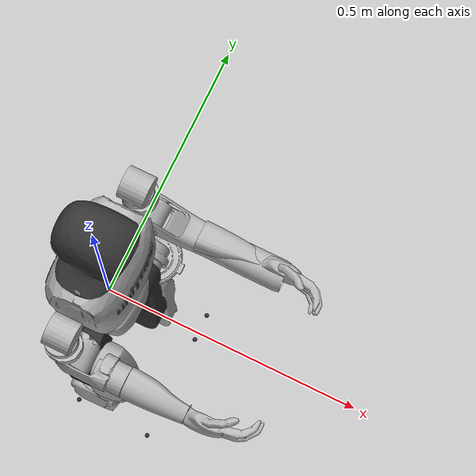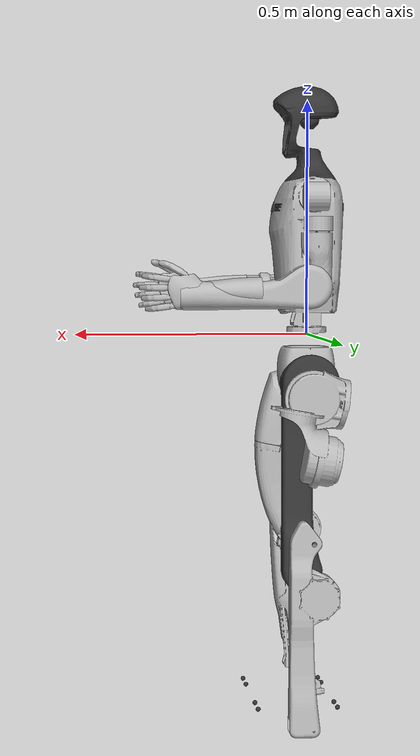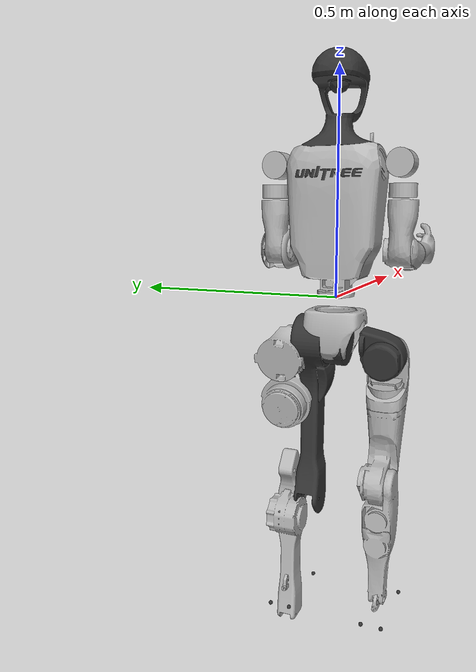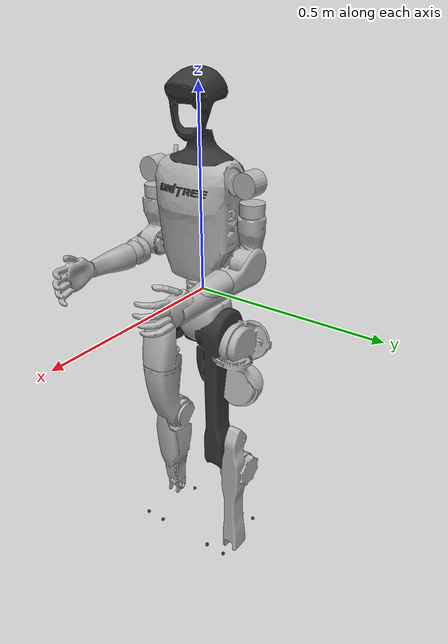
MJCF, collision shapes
<?xml version='1.0' encoding='utf-8'?>
<mujoco model="g1_23dof_rev_1_0">
  <compiler angle="radian" meshdir=".." boundmass="1e-06" boundinertia="1e-08" />
  <asset>
    <mesh name="mesh_0" content_type="model/stl" file="meshes/pelvis.STL" />
    <mesh name="mesh_1" content_type="model/stl" file="meshes/pelvis_contour_link.STL" />
    <mesh name="mesh_2" content_type="model/stl" file="meshes/pelvis_contour_link.STL" />
    <mesh name="mesh_3" content_type="model/stl" file="meshes/left_hip_pitch_link.STL" />
    <mesh name="mesh_4" content_type="model/stl" file="meshes/left_hip_pitch_link.STL" />
    <mesh name="mesh_5" content_type="model/stl" file="meshes/left_hip_roll_link.STL" />
    <mesh name="mesh_6" content_type="model/stl" file="meshes/left_hip_roll_link.STL" />
    <mesh name="mesh_7" content_type="model/stl" file="meshes/left_hip_yaw_link.STL" />
    <mesh name="mesh_8" content_type="model/stl" file="meshes/left_hip_yaw_link.STL" />
    <mesh name="mesh_9" content_type="model/stl" file="meshes/left_knee_link.STL" />
    <mesh name="mesh_10" content_type="model/stl" file="meshes/left_knee_link.STL" />
    <mesh name="mesh_11" content_type="model/stl" file="meshes/left_ankle_pitch_link.STL" />
    <mesh name="mesh_12" content_type="model/stl" file="meshes/left_ankle_pitch_link.STL" />
    <mesh name="mesh_13" content_type="model/stl" file="meshes/left_ankle_roll_link.STL" />
    <mesh name="mesh_14" content_type="model/stl" file="meshes/right_hip_pitch_link.STL" />
    <mesh name="mesh_15" content_type="model/stl" file="meshes/right_hip_pitch_link.STL" />
    <mesh name="mesh_16" content_type="model/stl" file="meshes/right_hip_roll_link.STL" />
    <mesh name="mesh_17" content_type="model/stl" file="meshes/right_hip_roll_link.STL" />
    <mesh name="mesh_18" content_type="model/stl" file="meshes/right_hip_yaw_link.STL" />
    <mesh name="mesh_19" content_type="model/stl" file="meshes/right_hip_yaw_link.STL" />
    <mesh name="mesh_20" content_type="model/stl" file="meshes/right_knee_link.STL" />
    <mesh name="mesh_21" content_type="model/stl" file="meshes/right_knee_link.STL" />
    <mesh name="mesh_22" content_type="model/stl" file="meshes/right_ankle_pitch_link.STL" />
    <mesh name="mesh_23" content_type="model/stl" file="meshes/right_ankle_pitch_link.STL" />
    <mesh name="mesh_24" content_type="model/stl" file="meshes/right_ankle_roll_link.STL" />
    <mesh name="mesh_25" content_type="model/stl" file="meshes/torso_link_23dof_rev_1_0.STL" />
    <mesh name="mesh_26" content_type="model/stl" file="meshes/torso_link_23dof_rev_1_0.STL" />
    <mesh name="mesh_27" content_type="model/stl" file="meshes/logo_link.STL" />
    <mesh name="mesh_28" content_type="model/stl" file="meshes/logo_link.STL" />
    <mesh name="mesh_29" content_type="model/stl" file="meshes/head_link.STL" />
    <mesh name="mesh_30" content_type="model/stl" file="meshes/head_link.STL" />
    <mesh name="mesh_31" content_type="model/stl" file="meshes/left_shoulder_pitch_link.STL" />
    <mesh name="mesh_32" content_type="model/stl" file="meshes/left_shoulder_roll_link.STL" />
    <mesh name="mesh_33" content_type="model/stl" file="meshes/left_shoulder_yaw_link.STL" />
    <mesh name="mesh_34" content_type="model/stl" file="meshes/left_shoulder_yaw_link.STL" />
    <mesh name="mesh_35" content_type="model/stl" file="meshes/left_elbow_link.STL" />
    <mesh name="mesh_36" content_type="model/stl" file="meshes/left_elbow_link.STL" />
    <mesh name="mesh_37" content_type="model/stl" file="meshes/left_wrist_roll_rubber_hand.STL" />
    <mesh name="mesh_38" content_type="model/stl" file="meshes/left_wrist_roll_rubber_hand.STL" />
    <mesh name="mesh_39" content_type="model/stl" file="meshes/right_shoulder_pitch_link.STL" />
    <mesh name="mesh_40" content_type="model/stl" file="meshes/right_shoulder_roll_link.STL" />
    <mesh name="mesh_41" content_type="model/stl" file="meshes/right_shoulder_yaw_link.STL" />
    <mesh name="mesh_42" content_type="model/stl" file="meshes/right_shoulder_yaw_link.STL" />
    <mesh name="mesh_43" content_type="model/stl" file="meshes/right_elbow_link.STL" />
    <mesh name="mesh_44" content_type="model/stl" file="meshes/right_elbow_link.STL" />
    <mesh name="mesh_45" content_type="model/stl" file="meshes/right_wrist_roll_rubber_hand.STL" />
    <mesh name="mesh_46" content_type="model/stl" file="meshes/right_wrist_roll_rubber_hand.STL" />
  </asset>
  <worldbody>
    <body name="pelvis">
      <inertial pos="2.37284e-08 0 -0.0760301" quat="1 0 -0.00039983 0" mass="3.814" diaginertia="0.0105549 0.00931481 0.00791852" />
      <joint type="free" />
      <geom type="mesh" contype="0" conaffinity="0" group="1" density="0" rgba="0.2 0.2 0.2 1" mesh="mesh_0" />
      <geom type="mesh" contype="0" conaffinity="0" group="1" density="0" rgba="0.7 0.7 0.7 1" mesh="mesh_1" />
      <geom type="mesh" rgba="0.7 0.7 0.7 1" mesh="mesh_2" />
      <body name="left_hip_pitch_link" pos="0 0.064452 -0.1027">
        <inertial pos="0.002741 0.047791 -0.02606" quat="0.954862 0.293964 0.0302556 0.030122" mass="1.35" diaginertia="0.00181517 0.00153422 0.00116212" />
        <joint name="left_hip_pitch_joint" pos="0 0 0" axis="0 1 0" range="-2.5307 2.8798" actuatorfrcrange="-88 88" />
        <geom type="mesh" contype="0" conaffinity="0" group="1" density="0" rgba="0.2 0.2 0.2 1" mesh="mesh_3" />
        <geom type="mesh" rgba="0.2 0.2 0.2 1" mesh="mesh_4" />
        <body name="left_hip_roll_link" pos="0 0.052 -0.030465" quat="0.996179 0 -0.0873386 0">
          <inertial pos="0.029812 -0.001045 -0.087934" quat="0.977808 -1.97119e-05 0.205576 -0.0403793" mass="1.52" diaginertia="0.00254986 0.00241169 0.00148755" />
          <joint name="left_hip_roll_joint" pos="0 0 0" axis="1 0 0" range="-0.5236 2.9671" actuatorfrcrange="-139 139" />
          <geom type="mesh" contype="0" conaffinity="0" group="1" density="0" rgba="0.7 0.7 0.7 1" mesh="mesh_5" />
          <geom type="mesh" rgba="0.7 0.7 0.7 1" mesh="mesh_6" />
          <body name="left_hip_yaw_link" pos="0.025001 0 -0.12412">
            <inertial pos="-0.057709 -0.010981 -0.15078" quat="0.600598 0.15832 0.223482 0.751181" mass="1.702" diaginertia="0.00776166 0.00717575 0.00160139" />
            <joint name="left_hip_yaw_joint" pos="0 0 0" axis="0 0 1" range="-2.7576 2.7576" actuatorfrcrange="-88 88" />
            <geom type="mesh" contype="0" conaffinity="0" group="1" density="0" rgba="0.7 0.7 0.7 1" mesh="mesh_7" />
            <geom type="mesh" rgba="0.7 0.7 0.7 1" mesh="mesh_8" />
            <body name="left_knee_link" pos="-0.078273 0.0021489 -0.17734" quat="0.996179 0 0.0873386 0">
              <inertial pos="0.005457 0.003964 -0.12074" quat="0.923418 -0.0327699 0.0158246 0.382067" mass="1.932" diaginertia="0.0113804 0.0112778 0.00146458" />
              <joint name="left_knee_joint" pos="0 0 0" axis="0 1 0" range="-0.087267 2.8798" actuatorfrcrange="-139 139" />
              <geom type="mesh" contype="0" conaffinity="0" group="1" density="0" rgba="0.7 0.7 0.7 1" mesh="mesh_9" />
              <geom type="mesh" rgba="0.7 0.7 0.7 1" mesh="mesh_10" />
              <body name="left_ankle_pitch_link" pos="0 -9.4445e-05 -0.30001">
                <inertial pos="-0.007269 0 0.011137" quat="0.603053 0.369225 0.369225 0.603053" mass="0.074" diaginertia="1.89e-05 1.40805e-05 6.9195e-06" />
                <joint name="left_ankle_pitch_joint" pos="0 0 0" axis="0 1 0" range="-0.87267 0.5236" actuatorfrcrange="-35 35" />
                <geom type="mesh" contype="0" conaffinity="0" group="1" density="0" rgba="0.7 0.7 0.7 1" mesh="mesh_11" />
                <geom type="mesh" rgba="0.7 0.7 0.7 1" mesh="mesh_12" />
                <body name="left_ankle_roll_link" pos="0 0 -0.017558">
                  <inertial pos="0.026505 0 -0.016425" quat="-0.000481092 0.728482 -0.000618967 0.685065" mass="0.608" diaginertia="0.00167218 0.0016161 0.000217621" />
                  <joint name="left_ankle_roll_joint" pos="0 0 0" axis="1 0 0" range="-0.2618 0.2618" actuatorfrcrange="-35 35" />
                  <geom type="mesh" contype="0" conaffinity="0" group="1" density="0" rgba="0.2 0.2 0.2 1" mesh="mesh_13" />
                  <geom size="0.005" pos="-0.05 0.025 -0.03" rgba="0.2 0.2 0.2 1" />
                  <geom size="0.005" pos="-0.05 -0.025 -0.03" rgba="0.2 0.2 0.2 1" />
                  <geom size="0.005" pos="0.12 0.03 -0.03" rgba="0.2 0.2 0.2 1" />
                  <geom size="0.005" pos="0.12 -0.03 -0.03" rgba="0.2 0.2 0.2 1" />
                </body>
              </body>
            </body>
          </body>
        </body>
      </body>
      <body name="right_hip_pitch_link" pos="0 -0.064452 -0.1027">
        <inertial pos="0.002741 -0.047791 -0.02606" quat="0.954862 -0.293964 0.0302556 -0.030122" mass="1.35" diaginertia="0.00181517 0.00153422 0.00116212" />
        <joint name="right_hip_pitch_joint" pos="0 0 0" axis="0 1 0" range="-2.5307 2.8798" actuatorfrcrange="-88 88" />
        <geom type="mesh" contype="0" conaffinity="0" group="1" density="0" rgba="0.2 0.2 0.2 1" mesh="mesh_14" />
        <geom type="mesh" rgba="0.2 0.2 0.2 1" mesh="mesh_15" />
        <body name="right_hip_roll_link" pos="0 -0.052 -0.030465" quat="0.996179 0 -0.0873386 0">
          <inertial pos="0.029812 0.001045 -0.087934" quat="0.977808 1.97119e-05 0.205576 0.0403793" mass="1.52" diaginertia="0.00254986 0.00241169 0.00148755" />
          <joint name="right_hip_roll_joint" pos="0 0 0" axis="1 0 0" range="-2.9671 0.5236" actuatorfrcrange="-139 139" />
          <geom type="mesh" contype="0" conaffinity="0" group="1" density="0" rgba="0.7 0.7 0.7 1" mesh="mesh_16" />
          <geom type="mesh" rgba="0.7 0.7 0.7 1" mesh="mesh_17" />
          <body name="right_hip_yaw_link" pos="0.025001 0 -0.12412">
            <inertial pos="-0.057709 0.010981 -0.15078" quat="0.751181 0.223482 0.15832 0.600598" mass="1.702" diaginertia="0.00776166 0.00717575 0.00160139" />
            <joint name="right_hip_yaw_joint" pos="0 0 0" axis="0 0 1" range="-2.7576 2.7576" actuatorfrcrange="-88 88" />
            <geom type="mesh" contype="0" conaffinity="0" group="1" density="0" rgba="0.7 0.7 0.7 1" mesh="mesh_18" />
            <geom type="mesh" rgba="0.7 0.7 0.7 1" mesh="mesh_19" />
            <body name="right_knee_link" pos="-0.078273 -0.0021489 -0.17734" quat="0.996179 0 0.0873386 0">
              <inertial pos="0.005457 -0.003964 -0.12074" quat="0.923439 0.0345276 0.0116333 -0.382012" mass="1.932" diaginertia="0.011374 0.0112843 0.00146452" />
              <joint name="right_knee_joint" pos="0 0 0" axis="0 1 0" range="-0.087267 2.8798" actuatorfrcrange="-139 139" />
              <geom type="mesh" contype="0" conaffinity="0" group="1" density="0" rgba="0.7 0.7 0.7 1" mesh="mesh_20" />
              <geom type="mesh" rgba="0.7 0.7 0.7 1" mesh="mesh_21" />
              <body name="right_ankle_pitch_link" pos="0 9.4445e-05 -0.30001">
                <inertial pos="-0.007269 0 0.011137" quat="0.603053 0.369225 0.369225 0.603053" mass="0.074" diaginertia="1.89e-05 1.40805e-05 6.9195e-06" />
                <joint name="right_ankle_pitch_joint" pos="0 0 0" axis="0 1 0" range="-0.87267 0.5236" actuatorfrcrange="-35 35" />
                <geom type="mesh" contype="0" conaffinity="0" group="1" density="0" rgba="0.7 0.7 0.7 1" mesh="mesh_22" />
                <geom type="mesh" rgba="0.7 0.7 0.7 1" mesh="mesh_23" />
                <body name="right_ankle_roll_link" pos="0 0 -0.017558">
                  <inertial pos="0.026505 0 -0.016425" quat="0.000481092 0.728482 0.000618967 0.685065" mass="0.608" diaginertia="0.00167218 0.0016161 0.000217621" />
                  <joint name="right_ankle_roll_joint" pos="0 0 0" axis="1 0 0" range="-0.2618 0.2618" actuatorfrcrange="-35 35" />
                  <geom type="mesh" contype="0" conaffinity="0" group="1" density="0" rgba="0.2 0.2 0.2 1" mesh="mesh_24" />
                  <geom size="0.005" pos="-0.05 0.025 -0.03" rgba="0.2 0.2 0.2 1" />
                  <geom size="0.005" pos="-0.05 -0.025 -0.03" rgba="0.2 0.2 0.2 1" />
                  <geom size="0.005" pos="0.12 0.03 -0.03" rgba="0.2 0.2 0.2 1" />
                  <geom size="0.005" pos="0.12 -0.03 -0.03" rgba="0.2 0.2 0.2 1" />
                </body>
              </body>
            </body>
          </body>
        </body>
      </body>
      <body name="torso_link" pos="-0.0039635 0 0.044">
        <inertial pos="0.00131545 0.000855541 0.1846" quat="0.999895 -0.00548214 0.0132911 0.00194148" mass="7.817" diaginertia="0.121735 0.109737 0.0274045" />
        <joint name="waist_yaw_joint" pos="0 0 0" axis="0 0 1" range="-2.618 2.618" actuatorfrcrange="-88 88" />
        <geom pos="0.0039635 0 -0.044" type="mesh" contype="0" conaffinity="0" group="1" density="0" rgba="0.7 0.7 0.7 1" mesh="mesh_25" />
        <geom pos="0.0039635 0 -0.044" type="mesh" rgba="0.7 0.7 0.7 1" mesh="mesh_26" />
        <geom pos="0.0039635 0 -0.044" quat="1 0 0 0" type="mesh" contype="0" conaffinity="0" group="1" density="0" rgba="0.2 0.2 0.2 1" mesh="mesh_27" />
        <geom pos="0.0039635 0 -0.044" quat="1 0 0 0" type="mesh" rgba="0.2 0.2 0.2 1" mesh="mesh_28" />
        <geom pos="0.0039635 0 -0.044" type="mesh" contype="0" conaffinity="0" group="1" density="0" rgba="0.2 0.2 0.2 1" mesh="mesh_29" />
        <geom pos="0.0039635 0 -0.044" type="mesh" rgba="0.2 0.2 0.2 1" mesh="mesh_30" />
        <body name="left_shoulder_pitch_link" pos="0.0039563 0.10022 0.24778" quat="0.990264 0.139201 1.38722e-05 -9.86868e-05">
          <inertial pos="0 0.035892 -0.011628" quat="0.654152 0.0130458 -0.326267 0.68225" mass="0.718" diaginertia="0.000465864 0.000432842 0.000406394" />
          <joint name="left_shoulder_pitch_joint" pos="0 0 0" axis="0 1 0" range="-3.0892 2.6704" actuatorfrcrange="-25 25" />
          <geom type="mesh" contype="0" conaffinity="0" group="1" density="0" rgba="0.7 0.7 0.7 1" mesh="mesh_31" />
          <geom size="0.03 0.025" pos="0 0.04 -0.01" quat="0.707107 0 0.707107 0" type="cylinder" rgba="0.7 0.7 0.7 1" />
          <body name="left_shoulder_roll_link" pos="0 0.038 -0.013831" quat="0.990268 -0.139172 0 0">
            <inertial pos="-0.000227 0.00727 -0.063243" quat="0.701256 -0.0196223 -0.00710317 0.712604" mass="0.643" diaginertia="0.000691311 0.000618011 0.000388977" />
            <joint name="left_shoulder_roll_joint" pos="0 0 0" axis="1 0 0" range="-1.5882 2.2515" actuatorfrcrange="-25 25" />
            <geom type="mesh" contype="0" conaffinity="0" group="1" density="0" rgba="0.7 0.7 0.7 1" mesh="mesh_32" />
            <geom size="0.03 0.015" pos="-0.004 0.006 -0.053" type="cylinder" rgba="0.7 0.7 0.7 1" />
            <body name="left_shoulder_yaw_link" pos="0 0.00624 -0.1032">
              <inertial pos="0.010773 -0.002949 -0.072009" quat="0.716879 -0.0964829 -0.0679942 0.687134" mass="0.734" diaginertia="0.00106187 0.00103217 0.000400661" />
              <joint name="left_shoulder_yaw_joint" pos="0 0 0" axis="0 0 1" range="-2.618 2.618" actuatorfrcrange="-25 25" />
              <geom type="mesh" contype="0" conaffinity="0" group="1" density="0" rgba="0.7 0.7 0.7 1" mesh="mesh_33" />
              <geom type="mesh" rgba="0.7 0.7 0.7 1" mesh="mesh_34" />
              <body name="left_elbow_link" pos="0.015783 0 -0.080518">
                <inertial pos="0.064956 0.004454 -0.010062" quat="0.541765 0.636132 0.388821 0.388129" mass="0.6" diaginertia="0.000443035 0.000421612 0.000259353" />
                <joint name="left_elbow_joint" pos="0 0 0" axis="0 1 0" range="-1.0472 2.0944" actuatorfrcrange="-25 25" />
                <geom type="mesh" contype="0" conaffinity="0" group="1" density="0" rgba="0.7 0.7 0.7 1" mesh="mesh_35" />
                <geom type="mesh" rgba="0.7 0.7 0.7 1" mesh="mesh_36" />
                <body name="left_wrist_roll_rubber_hand" pos="0.1 0.00188791 -0.01">
                  <inertial pos="0.107947 0.00163512 0.00202245" quat="0.494051 0.504265 0.48416 0.516933" mass="0.356929" diaginertia="0.00200292 0.0019426 0.000195232" />
                  <joint name="left_wrist_roll_joint" pos="0 0 0" axis="1 0 0" range="-1.97222 1.97222" actuatorfrcrange="-25 25" />
                  <geom type="mesh" contype="0" conaffinity="0" group="1" density="0" rgba="0.7 0.7 0.7 1" mesh="mesh_37" />
                  <geom type="mesh" rgba="0.7 0.7 0.7 1" mesh="mesh_38" />
                </body>
              </body>
            </body>
          </body>
        </body>
        <body name="right_shoulder_pitch_link" pos="0.0039563 -0.10021 0.24778" quat="0.990264 -0.139201 1.38722e-05 9.86868e-05">
          <inertial pos="0 -0.035892 -0.011628" quat="0.68225 -0.326267 0.0130458 0.654152" mass="0.718" diaginertia="0.000465864 0.000432842 0.000406394" />
          <joint name="right_shoulder_pitch_joint" pos="0 0 0" axis="0 1 0" range="-3.0892 2.6704" actuatorfrcrange="-25 25" />
          <geom type="mesh" contype="0" conaffinity="0" group="1" density="0" rgba="0.7 0.7 0.7 1" mesh="mesh_39" />
          <geom size="0.03 0.025" pos="0 -0.04 -0.01" quat="0.707107 0 0.707107 0" type="cylinder" rgba="0.7 0.7 0.7 1" />
          <body name="right_shoulder_roll_link" pos="0 -0.038 -0.013831" quat="0.990268 0.139172 0 0">
            <inertial pos="-0.000227 -0.00727 -0.063243" quat="0.712604 -0.00710317 -0.0196223 0.701256" mass="0.643" diaginertia="0.000691311 0.000618011 0.000388977" />
            <joint name="right_shoulder_roll_joint" pos="0 0 0" axis="1 0 0" range="-2.2515 1.5882" actuatorfrcrange="-25 25" />
            <geom type="mesh" contype="0" conaffinity="0" group="1" density="0" rgba="0.7 0.7 0.7 1" mesh="mesh_40" />
            <geom size="0.03 0.015" pos="-0.004 -0.006 -0.053" type="cylinder" rgba="0.7 0.7 0.7 1" />
            <body name="right_shoulder_yaw_link" pos="0 -0.00624 -0.1032">
              <inertial pos="0.010773 0.002949 -0.072009" quat="0.687134 -0.0679942 -0.0964829 0.716879" mass="0.734" diaginertia="0.00106187 0.00103217 0.000400661" />
              <joint name="right_shoulder_yaw_joint" pos="0 0 0" axis="0 0 1" range="-2.618 2.618" actuatorfrcrange="-25 25" />
              <geom type="mesh" contype="0" conaffinity="0" group="1" density="0" rgba="0.7 0.7 0.7 1" mesh="mesh_41" />
              <geom type="mesh" rgba="0.7 0.7 0.7 1" mesh="mesh_42" />
              <body name="right_elbow_link" pos="0.015783 0 -0.080518">
                <inertial pos="0.064956 -0.004454 -0.010062" quat="0.388129 0.388821 0.636132 0.541765" mass="0.6" diaginertia="0.000443035 0.000421612 0.000259353" />
                <joint name="right_elbow_joint" pos="0 0 0" axis="0 1 0" range="-1.0472 2.0944" actuatorfrcrange="-25 25" />
                <geom type="mesh" contype="0" conaffinity="0" group="1" density="0" rgba="0.7 0.7 0.7 1" mesh="mesh_43" />
                <geom type="mesh" rgba="0.7 0.7 0.7 1" mesh="mesh_44" />
                <body name="right_wrist_roll_rubber_hand" pos="0.1 -0.00188791 -0.01">
                  <inertial pos="0.107947 -0.00163512 0.00202245" quat="0.516933 0.48416 0.504265 0.494051" mass="0.356929" diaginertia="0.00200292 0.0019426 0.000195232" />
                  <joint name="right_wrist_roll_joint" pos="0 0 0" axis="1 0 0" range="-1.97222 1.97222" actuatorfrcrange="-25 25" />
                  <geom type="mesh" contype="0" conaffinity="0" group="1" density="0" rgba="0.7 0.7 0.7 1" mesh="mesh_45" />
                  <geom type="mesh" rgba="0.7 0.7 0.7 1" mesh="mesh_46" />
                </body>
              </body>
            </body>
          </body>
        </body>
      </body>
    </body>
  </worldbody>
</mujoco>
